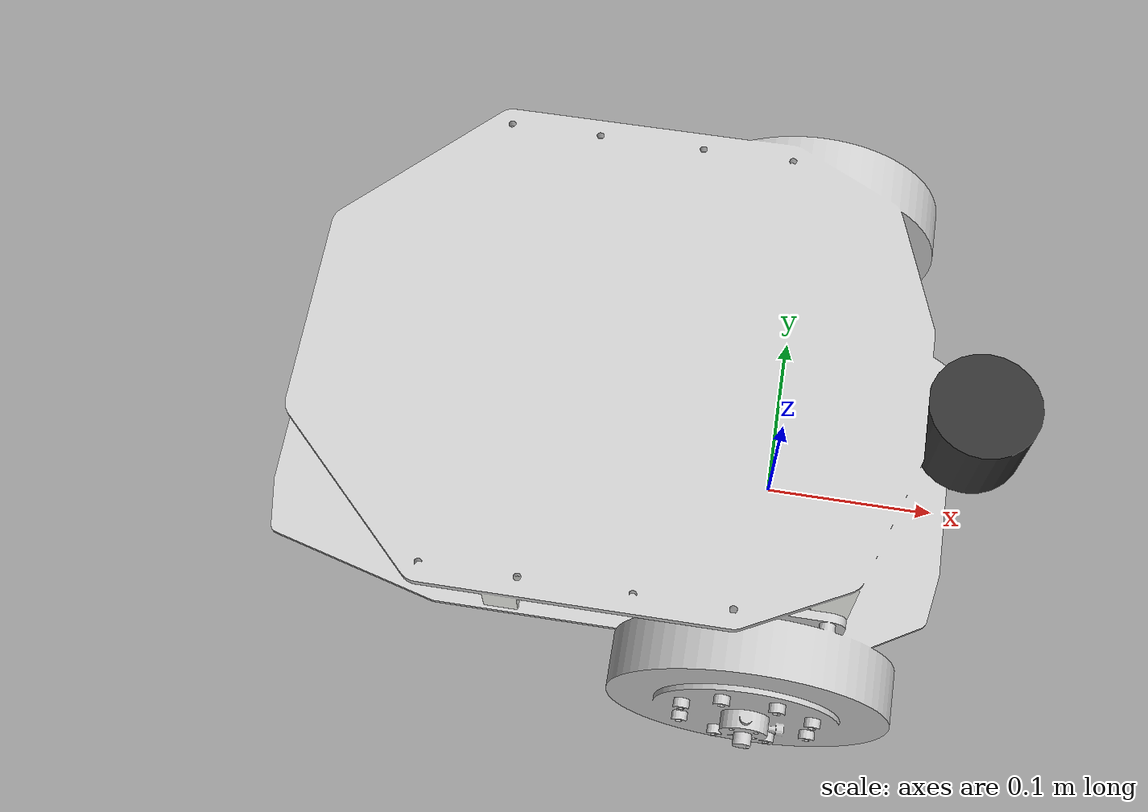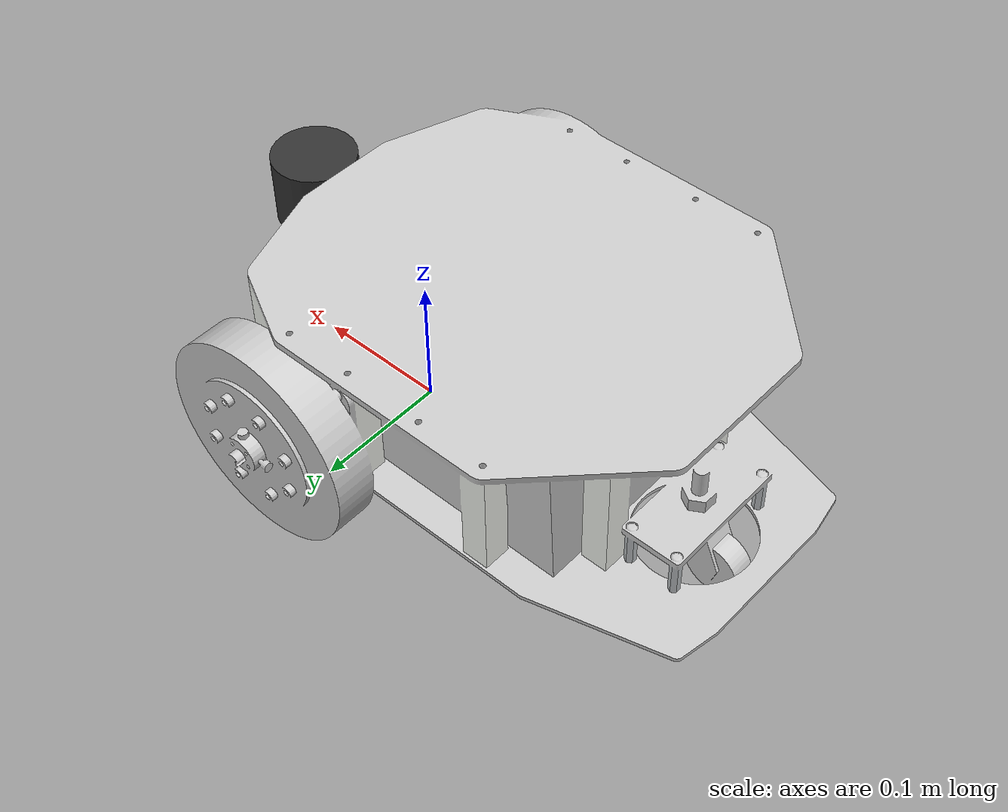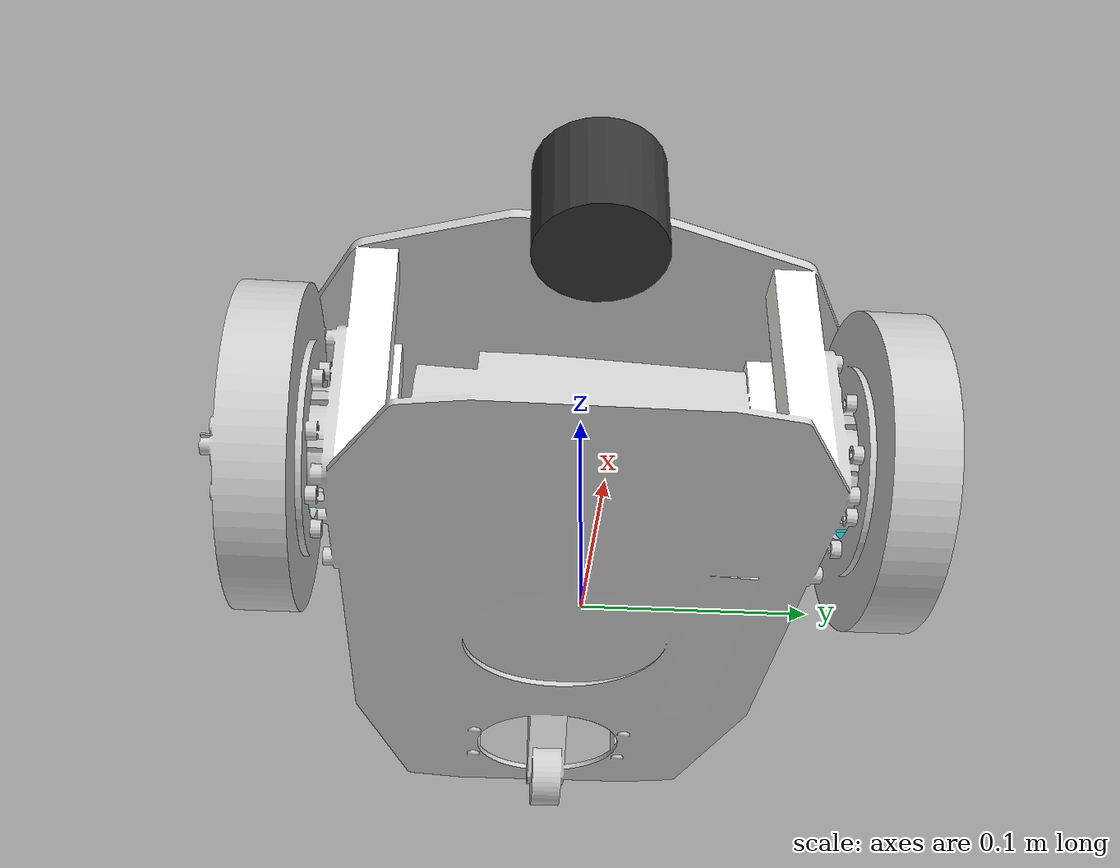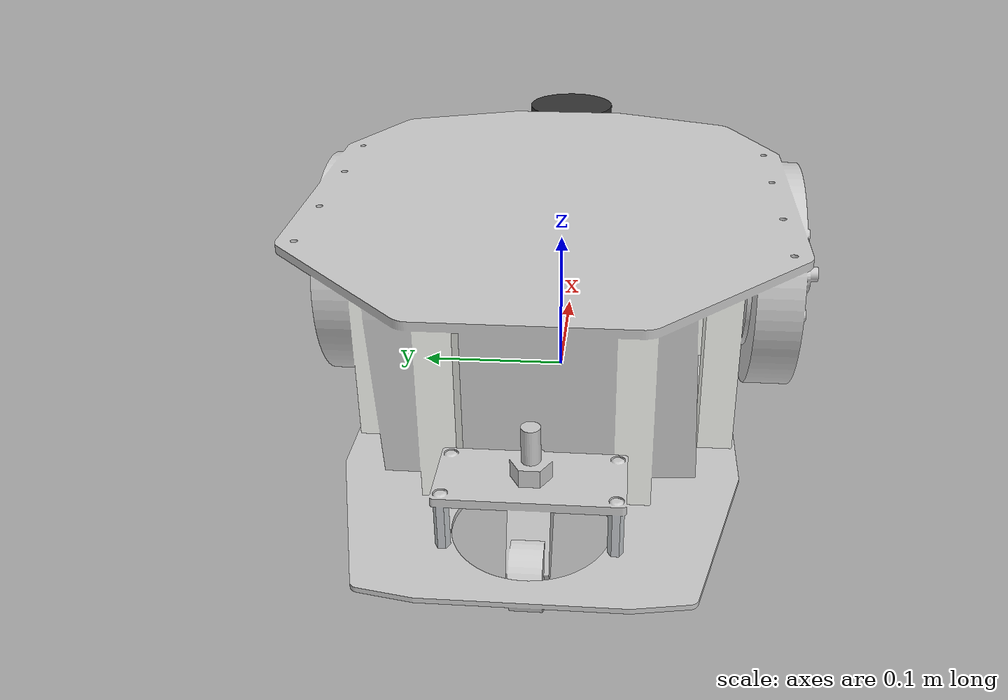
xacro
<?xml version="1.0"?>
<robot name="megarover20" xmlns:xacro="http://ros.org/wiki/xacro">
  <xacro:include filename="$(find megarover_samples_ros2)/urdf/body/body.urdf.xacro"/>

  <link name="base_footprint"/>

  <xacro:body parent="base_footprint">
    <origin xyz="0 0 0"/>
  </xacro:body>

  <material name="orange">
    <color rgba="1.0 0.5 0.2 1" />
  </material>
  <material name="gray">
    <color rgba="0.2 0.2 0.2 1" />
  </material>

  <link name="horizontal_laser_link">
    <visual>
      <origin xyz="0 0 -0.08" />
      <geometry>
        <cylinder length="0.05" radius="0.03" />
      </geometry>
      <material name="gray" />
    </visual>
  </link>

  <joint name="horizontal_laser_link_joint" type="fixed">
    <parent link="base_link" />
    <child link="horizontal_laser_link" />
    <origin xyz="0.1 0 0.06" rpy="3.14159 0.0 0.0"/>
  </joint>

</robot>

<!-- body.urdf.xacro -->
<robot xmlns:xacro="http://ros.org/wiki/xacro">
  <xacro:macro name="body" params="parent *joint_origin">
    <joint name="base_joint" type="fixed">
      <xacro:insert_block name="joint_origin"/>
      <parent link="${parent}"/>
      <child  link="base_link"/>
    </joint>
    <link name="base_link">
      <visual>
        <origin xyz="-0.028241 -0.073553 0.01"/>
        <geometry>
          <mesh filename="package://megarover_samples_ros2/models/vmegarover/meshes/dae/megarover.dae"/>
        </geometry>
      </visual>
    </link>
  </xacro:macro>

</robot>
